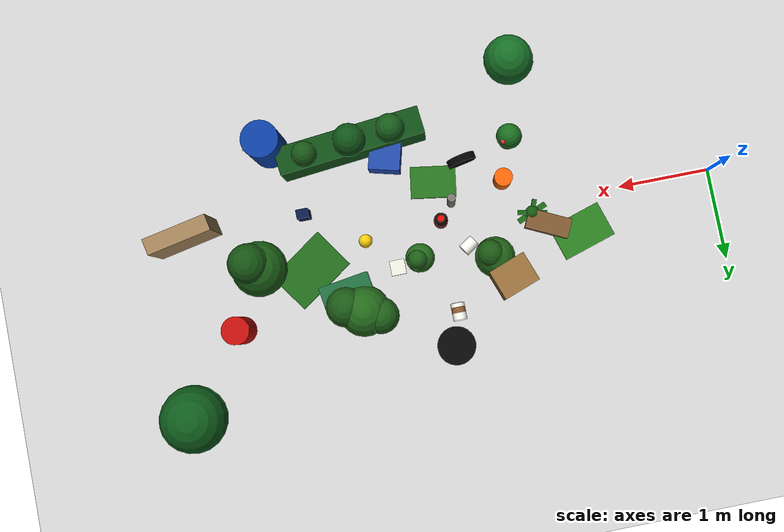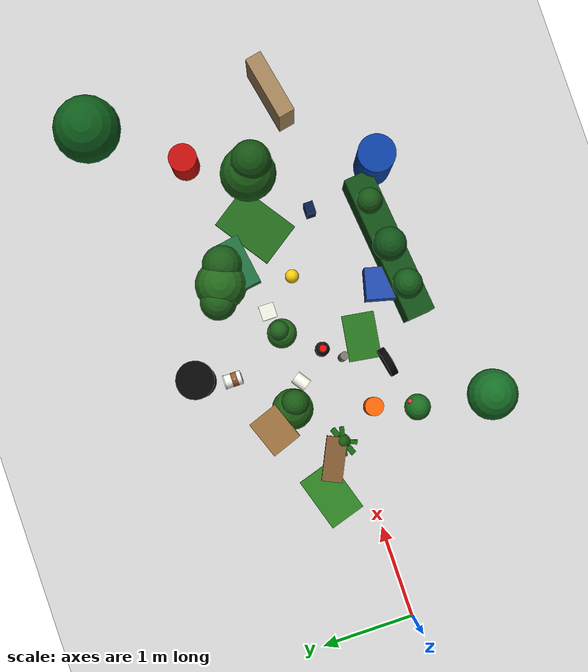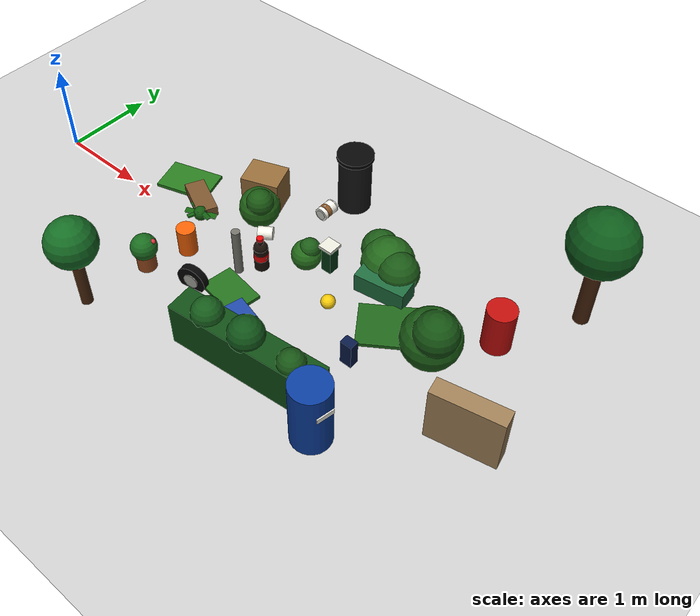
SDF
<?xml version="1.0" ?>
<sdf version="1.9">
  <world name="litterbot_world">

    <physics name="1ms" type="ignored">
      <max_step_size>0.001</max_step_size>
      <real_time_factor>1.0</real_time_factor>
    </physics>

    <plugin filename="ignition-gazebo-physics-system"
            name="ignition::gazebo::systems::Physics"/>
    <plugin filename="ignition-gazebo-user-commands-system"
            name="ignition::gazebo::systems::UserCommands"/>
    <plugin filename="ignition-gazebo-scene-broadcaster-system"
            name="ignition::gazebo::systems::SceneBroadcaster"/>
    <plugin filename="ignition-gazebo-sensors-system"
            name="ignition::gazebo::systems::Sensors">
      <render_engine>ogre</render_engine>
    </plugin>

    <light type="directional" name="sun">
      <cast_shadows>true</cast_shadows>
      <pose>0 0 10 0 0 0</pose>
      <diffuse>0.8 0.8 0.8 1</diffuse>
      <specular>0.2 0.2 0.2 1</specular>
      <direction>0.5 -0.1 -0.9</direction>
    </light>

    <model name="ground_plane">
      <static>true</static>
      <link name="link">
        <collision name="collision">
          <geometry>
            <plane>
              <normal>0 0 1</normal>
              <size>30 30</size>
            </plane>
          </geometry>
        </collision>
        <visual name="visual">
          <geometry>
            <plane>
              <normal>0 0 1</normal>
              <size>30 30</size>
            </plane>
          </geometry>
          <material>
            <ambient>0.8 0.8 0.8 1</ambient>
            <diffuse>0.8 0.8 0.8 1</diffuse>
          </material>
        </visual>
      </link>
    </model>

    <model name="target_coke_can">
      <static>true</static>
      <pose>3 0 0.19 0 0 0</pose>
      <link name="link">
        <collision name="body_collision">
          <pose>0 0 -0.035 0 0 0</pose>
          <geometry>
            <cylinder>
              <radius>0.075</radius>
              <length>0.27</length>
            </cylinder>
          </geometry>
        </collision>
        <collision name="neck_collision">
          <pose>0 0 0.135 0 0 0</pose>
          <geometry>
            <cylinder>
              <radius>0.032</radius>
              <length>0.12</length>
            </cylinder>
          </geometry>
        </collision>

        <visual name="bottle_body">
          <pose>0 0 -0.035 0 0 0</pose>
          <geometry>
            <cylinder>
              <radius>0.075</radius>
              <length>0.27</length>
            </cylinder>
          </geometry>
          <material>
            <ambient>0.06 0.035 0.02 1</ambient>
            <diffuse>0.10 0.06 0.035 1</diffuse>
            <specular>0.8 0.8 0.8 1</specular>
          </material>
        </visual>
        <visual name="red_label_front">
          <pose>0.001 0 0.0 0 0 0</pose>
          <geometry>
            <cylinder>
              <radius>0.077</radius>
              <length>0.075</length>
            </cylinder>
          </geometry>
          <material>
            <ambient>0.9 0.02 0.02 1</ambient>
            <diffuse>0.9 0.02 0.02 1</diffuse>
            <specular>0.2 0.2 0.2 1</specular>
          </material>
        </visual>
        <visual name="white_label_band">
          <pose>0.002 0 0.0 0 0 0</pose>
          <geometry>
            <box>
              <size>0.155 0.012 0.022</size>
            </box>
          </geometry>
          <material>
            <ambient>1 1 1 1</ambient>
            <diffuse>1 1 1 1</diffuse>
            <specular>0.1 0.1 0.1 1</specular>
          </material>
        </visual>
        <visual name="shoulder">
          <pose>0 0 0.105 0 0 0</pose>
          <geometry>
            <sphere>
              <radius>0.074</radius>
            </sphere>
          </geometry>
          <material>
            <ambient>0.06 0.035 0.02 1</ambient>
            <diffuse>0.10 0.06 0.035 1</diffuse>
            <specular>0.8 0.8 0.8 1</specular>
          </material>
        </visual>
        <visual name="neck">
          <pose>0 0 0.145 0 0 0</pose>
          <geometry>
            <cylinder>
              <radius>0.032</radius>
              <length>0.13</length>
            </cylinder>
          </geometry>
          <material>
            <ambient>0.055 0.032 0.018 1</ambient>
            <diffuse>0.09 0.05 0.03 1</diffuse>
            <specular>0.8 0.8 0.8 1</specular>
          </material>
        </visual>
        <visual name="red_cap">
          <pose>0 0 0.225 0 0 0</pose>
          <geometry>
            <cylinder>
              <radius>0.036</radius>
              <length>0.035</length>
            </cylinder>
          </geometry>
          <material>
            <ambient>0.9 0.02 0.02 1</ambient>
            <diffuse>0.9 0.02 0.02 1</diffuse>
            <specular>0.3 0.3 0.3 1</specular>
          </material>
        </visual>
      </link>
    </model>

    <model name="target_paper_cup">
      <static>true</static>
      <pose>3 1.0 0.08 0 1.5708 1.5708</pose>
      <link name="link">
        <collision name="cup_collision">
          <pose>0 0 0 0 0 0</pose>
          <geometry>
            <cylinder>
              <radius>0.075</radius>
              <length>0.18</length>
            </cylinder>
          </geometry>
        </collision>

        <visual name="cup_body">
          <pose>0 0 0 0 0 0</pose>
          <geometry>
            <cylinder>
              <radius>0.075</radius>
              <length>0.18</length>
            </cylinder>
          </geometry>
          <material>
            <ambient>0.96 0.96 0.92 1</ambient>
            <diffuse>0.96 0.96 0.92 1</diffuse>
            <specular>0.25 0.25 0.22 1</specular>
          </material>
        </visual>
        <visual name="cup_opening_dark">
          <pose>0 0 0.092 0 0 0</pose>
          <geometry>
            <cylinder>
              <radius>0.071</radius>
              <length>0.006</length>
            </cylinder>
          </geometry>
          <material>
            <ambient>0.08 0.07 0.055 1</ambient>
            <diffuse>0.08 0.07 0.055 1</diffuse>
            <specular>0.05 0.05 0.05 1</specular>
          </material>
        </visual>
        <visual name="cup_rim">
          <pose>0 0 0.096 0 0 0</pose>
          <geometry>
            <cylinder>
              <radius>0.079</radius>
              <length>0.012</length>
            </cylinder>
          </geometry>
          <material>
            <ambient>1.0 1.0 0.97 1</ambient>
            <diffuse>1.0 1.0 0.97 1</diffuse>
            <specular>0.3 0.3 0.27 1</specular>
          </material>
        </visual>
        <visual name="cup_bottom">
          <pose>0 0 -0.092 0 0 0</pose>
          <geometry>
            <cylinder>
              <radius>0.055</radius>
              <length>0.01</length>
            </cylinder>
          </geometry>
          <material>
            <ambient>0.82 0.82 0.78 1</ambient>
            <diffuse>0.82 0.82 0.78 1</diffuse>
            <specular>0.15 0.15 0.12 1</specular>
          </material>
        </visual>
        <visual name="brown_sleeve">
          <pose>0 0 -0.015 0 0 0</pose>
          <geometry>
            <cylinder>
              <radius>0.076</radius>
              <length>0.06</length>
            </cylinder>
          </geometry>
          <material>
            <ambient>0.55 0.34 0.16 1</ambient>
            <diffuse>0.55 0.34 0.16 1</diffuse>
            <specular>0.12 0.08 0.04 1</specular>
          </material>
        </visual>
        <visual name="white_label_strip">
          <pose>0.001 0 -0.015 0 0 0</pose>
          <geometry>
            <box>
              <size>0.155 0.012 0.026</size>
            </box>
          </geometry>
          <material>
            <ambient>0.98 0.98 0.94 1</ambient>
            <diffuse>0.98 0.98 0.94 1</diffuse>
            <specular>0.1 0.1 0.08 1</specular>
          </material>
        </visual>
      </link>
    </model>

    <!-- Static clutter field for environment-robustness tests. -->
    <model name="clutter_cardboard_box_left">
      <static>true</static>
      <pose>2.35 0.75 0.20 0 0 0.35</pose>
      <link name="link">
        <collision name="collision">
          <geometry><box><size>0.42 0.34 0.40</size></box></geometry>
        </collision>
        <visual name="visual">
          <geometry><box><size>0.42 0.34 0.40</size></box></geometry>
          <material>
            <ambient>0.58 0.42 0.22 1</ambient>
            <diffuse>0.58 0.42 0.22 1</diffuse>
            <specular>0.08 0.06 0.03 1</specular>
          </material>
        </visual>
      </link>
    </model>

    <model name="clutter_blue_box_right">
      <static>true</static>
      <pose>3.45 -0.85 0.16 0 0 -0.25</pose>
      <link name="link">
        <collision name="collision">
          <geometry><box><size>0.34 0.42 0.32</size></box></geometry>
        </collision>
        <visual name="visual">
          <geometry><box><size>0.34 0.42 0.32</size></box></geometry>
          <material>
            <ambient>0.12 0.28 0.65 1</ambient>
            <diffuse>0.12 0.28 0.65 1</diffuse>
            <specular>0.12 0.12 0.18 1</specular>
          </material>
        </visual>
      </link>
    </model>

    <model name="clutter_low_green_crate">
      <static>true</static>
      <pose>4.15 0.55 0.11 0 0 0.15</pose>
      <link name="link">
        <collision name="collision">
          <geometry><box><size>0.55 0.25 0.22</size></box></geometry>
        </collision>
        <visual name="visual">
          <geometry><box><size>0.55 0.25 0.22</size></box></geometry>
          <material>
            <ambient>0.12 0.42 0.24 1</ambient>
            <diffuse>0.12 0.42 0.24 1</diffuse>
            <specular>0.05 0.08 0.05 1</specular>
          </material>
        </visual>
      </link>
    </model>

    <model name="clutter_round_bin_left">
      <static>true</static>
      <pose>3.1 1.35 0.33 0 0 0</pose>
      <link name="link">
        <collision name="collision">
          <geometry><cylinder><radius>0.18</radius><length>0.66</length></cylinder></geometry>
        </collision>
        <visual name="bin_body">
          <geometry><cylinder><radius>0.18</radius><length>0.66</length></cylinder></geometry>
          <material>
            <ambient>0.08 0.08 0.08 1</ambient>
            <diffuse>0.08 0.08 0.08 1</diffuse>
            <specular>0.25 0.25 0.25 1</specular>
          </material>
        </visual>
        <visual name="bin_lid">
          <pose>0 0 0.35 0 0 0</pose>
          <geometry><cylinder><radius>0.20</radius><length>0.045</length></cylinder></geometry>
          <material>
            <ambient>0.02 0.02 0.02 1</ambient>
            <diffuse>0.02 0.02 0.02 1</diffuse>
            <specular>0.3 0.3 0.3 1</specular>
          </material>
        </visual>
      </link>
    </model>

    <model name="clutter_recycle_bin_right">
      <static>true</static>
      <pose>4.7 -1.15 0.38 0 0 -0.2</pose>
      <link name="link">
        <collision name="collision">
          <geometry><cylinder><radius>0.20</radius><length>0.76</length></cylinder></geometry>
        </collision>
        <visual name="bin_body">
          <geometry><cylinder><radius>0.20</radius><length>0.76</length></cylinder></geometry>
          <material>
            <ambient>0.04 0.24 0.62 1</ambient>
            <diffuse>0.04 0.24 0.62 1</diffuse>
            <specular>0.16 0.16 0.22 1</specular>
          </material>
        </visual>
        <visual name="white_slot">
          <pose>0.205 0 0.16 0 0 0</pose>
          <geometry><box><size>0.012 0.18 0.055</size></box></geometry>
          <material>
            <ambient>0.95 0.95 0.9 1</ambient>
            <diffuse>0.95 0.95 0.9 1</diffuse>
            <specular>0.05 0.05 0.05 1</specular>
          </material>
        </visual>
      </link>
    </model>

    <model name="clutter_red_barrel">
      <static>true</static>
      <pose>5.35 0.75 0.25 0 0 0</pose>
      <link name="link">
        <collision name="collision">
          <geometry><cylinder><radius>0.15</radius><length>0.50</length></cylinder></geometry>
        </collision>
        <visual name="visual">
          <geometry><cylinder><radius>0.15</radius><length>0.50</length></cylinder></geometry>
          <material>
            <ambient>0.75 0.05 0.04 1</ambient>
            <diffuse>0.75 0.05 0.04 1</diffuse>
            <specular>0.15 0.08 0.08 1</specular>
          </material>
        </visual>
      </link>
    </model>

    <model name="clutter_tree_left">
      <static>true</static>
      <pose>5.8 1.55 0 0 0 0</pose>
      <link name="link">
        <collision name="trunk_collision">
          <pose>0 0 0.45 0 0 0</pose>
          <geometry><cylinder><radius>0.08</radius><length>0.90</length></cylinder></geometry>
        </collision>
        <visual name="trunk">
          <pose>0 0 0.45 0 0 0</pose>
          <geometry><cylinder><radius>0.08</radius><length>0.90</length></cylinder></geometry>
          <material>
            <ambient>0.28 0.14 0.05 1</ambient>
            <diffuse>0.28 0.14 0.05 1</diffuse>
            <specular>0.05 0.03 0.02 1</specular>
          </material>
        </visual>
        <visual name="canopy">
          <pose>0 0 1.05 0 0 0</pose>
          <geometry><sphere><radius>0.34</radius></sphere></geometry>
          <material>
            <ambient>0.05 0.35 0.10 1</ambient>
            <diffuse>0.05 0.35 0.10 1</diffuse>
            <specular>0.05 0.08 0.04 1</specular>
          </material>
        </visual>
      </link>
    </model>

    <model name="clutter_tree_right">
      <static>true</static>
      <pose>2.0 -1.45 0 0 0 0</pose>
      <link name="link">
        <collision name="trunk_collision">
          <pose>0 0 0.36 0 0 0</pose>
          <geometry><cylinder><radius>0.06</radius><length>0.72</length></cylinder></geometry>
        </collision>
        <visual name="trunk">
          <pose>0 0 0.36 0 0 0</pose>
          <geometry><cylinder><radius>0.06</radius><length>0.72</length></cylinder></geometry>
          <material>
            <ambient>0.30 0.16 0.06 1</ambient>
            <diffuse>0.30 0.16 0.06 1</diffuse>
            <specular>0.05 0.03 0.02 1</specular>
          </material>
        </visual>
        <visual name="canopy">
          <pose>0 0 0.82 0 0 0</pose>
          <geometry><sphere><radius>0.26</radius></sphere></geometry>
          <material>
            <ambient>0.08 0.42 0.14 1</ambient>
            <diffuse>0.08 0.42 0.14 1</diffuse>
            <specular>0.04 0.07 0.03 1</specular>
          </material>
        </visual>
      </link>
    </model>

    <model name="clutter_loose_tire">
      <static>true</static>
      <pose>2.65 -0.62 0.10 1.5708 0 0.2</pose>
      <link name="link">
        <collision name="collision">
          <geometry><cylinder><radius>0.16</radius><length>0.08</length></cylinder></geometry>
        </collision>
        <visual name="outer">
          <geometry><cylinder><radius>0.16</radius><length>0.08</length></cylinder></geometry>
          <material>
            <ambient>0.015 0.015 0.015 1</ambient>
            <diffuse>0.015 0.015 0.015 1</diffuse>
            <specular>0.12 0.12 0.12 1</specular>
          </material>
        </visual>
        <visual name="inner_hole">
          <pose>0 0 0.045 0 0 0</pose>
          <geometry><cylinder><radius>0.08</radius><length>0.01</length></cylinder></geometry>
          <material>
            <ambient>0.65 0.65 0.62 1</ambient>
            <diffuse>0.65 0.65 0.62 1</diffuse>
            <specular>0.04 0.04 0.04 1</specular>
          </material>
        </visual>
      </link>
    </model>

    <model name="clutter_near_occluder_post">
      <static>true</static>
      <pose>2.85 -0.18 0.28 0 0 0</pose>
      <link name="link">
        <collision name="collision">
          <geometry><cylinder><radius>0.045</radius><length>0.56</length></cylinder></geometry>
        </collision>
        <visual name="visual">
          <geometry><cylinder><radius>0.045</radius><length>0.56</length></cylinder></geometry>
          <material>
            <ambient>0.45 0.45 0.42 1</ambient>
            <diffuse>0.45 0.45 0.42 1</diffuse>
            <specular>0.18 0.18 0.18 1</specular>
          </material>
        </visual>
      </link>
    </model>

    <model name="clutter_small_white_cup_left">
      <static>true</static>
      <pose>2.75 0.32 0.09 0 1.5708 0.6</pose>
      <link name="link">
        <collision name="collision">
          <geometry><cylinder><radius>0.07</radius><length>0.16</length></cylinder></geometry>
        </collision>
        <visual name="visual">
          <geometry><cylinder><radius>0.07</radius><length>0.16</length></cylinder></geometry>
          <material>
            <ambient>0.95 0.95 0.90 1</ambient>
            <diffuse>0.95 0.95 0.90 1</diffuse>
            <specular>0.2 0.2 0.18 1</specular>
          </material>
        </visual>
      </link>
    </model>

    <model name="clutter_green_column_left">
      <static>true</static>
      <pose>3.55 0.42 0.19 0 0 0</pose>
      <link name="link">
        <collision name="collision">
          <geometry><box><size>0.12 0.12 0.30</size></box></geometry>
        </collision>
        <visual name="body">
          <geometry><box><size>0.12 0.12 0.30</size></box></geometry>
          <material>
            <ambient>0.02 0.22 0.08 1</ambient>
            <diffuse>0.02 0.22 0.08 1</diffuse>
            <specular>0.5 0.5 0.45 1</specular>
          </material>
        </visual>
        <visual name="top_plate">
          <pose>0 0 0.17 0 0 0</pose>
          <geometry><box><size>0.16 0.16 0.035</size></box></geometry>
          <material>
            <ambient>0.9 0.9 0.85 1</ambient>
            <diffuse>0.9 0.9 0.85 1</diffuse>
          </material>
        </visual>
      </link>
    </model>

    <model name="clutter_blue_column_right">
      <static>true</static>
      <pose>4.45 -0.35 0.19 0 0 0</pose>
      <link name="link">
        <collision name="collision">
          <geometry><box><size>0.13 0.10 0.29</size></box></geometry>
        </collision>
        <visual name="body">
          <geometry><box><size>0.13 0.10 0.29</size></box></geometry>
          <material>
            <ambient>0.03 0.10 0.28 1</ambient>
            <diffuse>0.03 0.10 0.28 1</diffuse>
            <specular>0.5 0.5 0.55 1</specular>
          </material>
        </visual>
      </link>
    </model>

    <model name="clutter_flat_box_foreground">
      <static>true</static>
      <pose>1.85 0.25 0.06 0 0 -0.45</pose>
      <link name="link">
        <collision name="collision">
          <geometry><box><size>0.48 0.22 0.12</size></box></geometry>
        </collision>
        <visual name="visual">
          <geometry><box><size>0.48 0.22 0.12</size></box></geometry>
          <material>
            <ambient>0.48 0.33 0.18 1</ambient>
            <diffuse>0.48 0.33 0.18 1</diffuse>
            <specular>0.06 0.04 0.02 1</specular>
          </material>
        </visual>
      </link>
    </model>

    <model name="clutter_back_wall_boxes">
      <static>true</static>
      <pose>5.75 -0.35 0.32 0 0 0.2</pose>
      <link name="link">
        <collision name="collision">
          <geometry><box><size>0.70 0.18 0.64</size></box></geometry>
        </collision>
        <visual name="visual">
          <geometry><box><size>0.70 0.18 0.64</size></box></geometry>
          <material>
            <ambient>0.62 0.50 0.34 1</ambient>
            <diffuse>0.62 0.50 0.34 1</diffuse>
          </material>
        </visual>
      </link>
    </model>

    <model name="clutter_yellow_ball">
      <static>true</static>
      <pose>3.85 0.05 0.075 0 0 0</pose>
      <link name="link">
        <collision name="collision">
          <geometry><sphere><radius>0.075</radius></sphere></geometry>
        </collision>
        <visual name="visual">
          <geometry><sphere><radius>0.075</radius></sphere></geometry>
          <material>
            <ambient>0.95 0.78 0.04 1</ambient>
            <diffuse>0.95 0.78 0.04 1</diffuse>
            <specular>0.18 0.16 0.08 1</specular>
          </material>
        </visual>
      </link>
    </model>

    <model name="clutter_short_cone">
      <static>true</static>
      <pose>2.25 -0.32 0.16 0 0 0</pose>
      <link name="link">
        <collision name="collision">
          <geometry><cylinder><radius>0.10</radius><length>0.32</length></cylinder></geometry>
        </collision>
        <visual name="visual">
          <geometry><cylinder><radius>0.10</radius><length>0.32</length></cylinder></geometry>
          <material>
            <ambient>0.95 0.38 0.02 1</ambient>
            <diffuse>0.95 0.38 0.02 1</diffuse>
            <specular>0.12 0.08 0.04 1</specular>
          </material>
        </visual>
      </link>
    </model>

    <!-- ============ FOLIAGE / VEGETATION ============ -->

    <!-- Low bush near the target area — partially occludes at close range -->
    <model name="foliage_bush_near_left">
      <static>true</static>
      <pose>2.5 0.50 0.0 0 0 0</pose>
      <link name="link">
        <collision name="collision">
          <pose>0 0 0.18 0 0 0</pose>
          <geometry><sphere><radius>0.22</radius></sphere></geometry>
        </collision>
        <visual name="bush_main">
          <pose>0 0 0.18 0 0 0</pose>
          <geometry><sphere><radius>0.22</radius></sphere></geometry>
          <material>
            <ambient>0.08 0.32 0.06 1</ambient>
            <diffuse>0.12 0.38 0.08 1</diffuse>
            <specular>0.03 0.05 0.02 1</specular>
          </material>
        </visual>
        <visual name="bush_top">
          <pose>0.05 -0.04 0.30 0 0 0</pose>
          <geometry><sphere><radius>0.15</radius></sphere></geometry>
          <material>
            <ambient>0.06 0.28 0.05 1</ambient>
            <diffuse>0.10 0.34 0.07 1</diffuse>
            <specular>0.03 0.04 0.02 1</specular>
          </material>
        </visual>
      </link>
    </model>

    <!-- Tall hedge along the right side -->
    <model name="foliage_hedge_right">
      <static>true</static>
      <pose>3.8 -1.0 0.25 0 0 0.1</pose>
      <link name="link">
        <collision name="collision">
          <geometry><box><size>1.6 0.3 0.50</size></box></geometry>
        </collision>
        <visual name="hedge_body">
          <geometry><box><size>1.6 0.3 0.50</size></box></geometry>
          <material>
            <ambient>0.04 0.25 0.06 1</ambient>
            <diffuse>0.06 0.30 0.08 1</diffuse>
            <specular>0.02 0.04 0.02 1</specular>
          </material>
        </visual>
        <visual name="hedge_top_bumps_1">
          <pose>-0.45 0 0.26 0 0 0</pose>
          <geometry><sphere><radius>0.16</radius></sphere></geometry>
          <material>
            <ambient>0.05 0.30 0.07 1</ambient>
            <diffuse>0.08 0.35 0.10 1</diffuse>
            <specular>0.02 0.04 0.02 1</specular>
          </material>
        </visual>
        <visual name="hedge_top_bumps_2">
          <pose>0.0 0 0.28 0 0 0</pose>
          <geometry><sphere><radius>0.18</radius></sphere></geometry>
          <material>
            <ambient>0.03 0.26 0.05 1</ambient>
            <diffuse>0.06 0.32 0.09 1</diffuse>
            <specular>0.02 0.03 0.02 1</specular>
          </material>
        </visual>
        <visual name="hedge_top_bumps_3">
          <pose>0.50 0 0.24 0 0 0</pose>
          <geometry><sphere><radius>0.14</radius></sphere></geometry>
          <material>
            <ambient>0.06 0.28 0.06 1</ambient>
            <diffuse>0.09 0.33 0.08 1</diffuse>
            <specular>0.02 0.04 0.02 1</specular>
          </material>
        </visual>
      </link>
    </model>

    <!-- Small round shrub in the mid-field -->
    <model name="foliage_shrub_mid">
      <static>true</static>
      <pose>3.3 0.35 0.0 0 0 0</pose>
      <link name="link">
        <collision name="collision">
          <pose>0 0 0.14 0 0 0</pose>
          <geometry><sphere><radius>0.16</radius></sphere></geometry>
        </collision>
        <visual name="shrub_lower">
          <pose>0 0 0.12 0 0 0</pose>
          <geometry><sphere><radius>0.16</radius></sphere></geometry>
          <material>
            <ambient>0.10 0.36 0.08 1</ambient>
            <diffuse>0.14 0.42 0.10 1</diffuse>
            <specular>0.03 0.05 0.03 1</specular>
          </material>
        </visual>
        <visual name="shrub_upper">
          <pose>0.03 0.02 0.22 0 0 0</pose>
          <geometry><sphere><radius>0.11</radius></sphere></geometry>
          <material>
            <ambient>0.07 0.30 0.06 1</ambient>
            <diffuse>0.11 0.36 0.09 1</diffuse>
            <specular>0.03 0.04 0.02 1</specular>
          </material>
        </visual>
      </link>
    </model>

    <!-- Grass patch cluster near robot start — low flat green boxes -->
    <model name="foliage_grass_patch_1">
      <static>true</static>
      <pose>1.5 0.4 0.02 0 0 0.3</pose>
      <link name="link">
        <collision name="collision">
          <geometry><box><size>0.6 0.4 0.04</size></box></geometry>
        </collision>
        <visual name="visual">
          <geometry><box><size>0.6 0.4 0.04</size></box></geometry>
          <material>
            <ambient>0.12 0.42 0.10 1</ambient>
            <diffuse>0.16 0.48 0.12 1</diffuse>
            <specular>0.02 0.03 0.01 1</specular>
          </material>
        </visual>
      </link>
    </model>

    <model name="foliage_grass_patch_2">
      <static>true</static>
      <pose>3.0 -0.45 0.02 0 0 -0.15</pose>
      <link name="link">
        <collision name="collision">
          <geometry><box><size>0.5 0.35 0.04</size></box></geometry>
        </collision>
        <visual name="visual">
          <geometry><box><size>0.5 0.35 0.04</size></box></geometry>
          <material>
            <ambient>0.10 0.38 0.08 1</ambient>
            <diffuse>0.14 0.44 0.11 1</diffuse>
            <specular>0.02 0.03 0.01 1</specular>
          </material>
        </visual>
      </link>
    </model>

    <model name="foliage_grass_patch_3">
      <static>true</static>
      <pose>4.5 0.25 0.02 0 0 0.6</pose>
      <link name="link">
        <collision name="collision">
          <geometry><box><size>0.7 0.5 0.04</size></box></geometry>
        </collision>
        <visual name="visual">
          <geometry><box><size>0.7 0.5 0.04</size></box></geometry>
          <material>
            <ambient>0.08 0.35 0.07 1</ambient>
            <diffuse>0.12 0.40 0.10 1</diffuse>
            <specular>0.02 0.03 0.01 1</specular>
          </material>
        </visual>
      </link>
    </model>

    <!-- Tall bush at far range — tests detection through foliage -->
    <model name="foliage_tall_bush_far">
      <static>true</static>
      <pose>5.0 0.15 0.0 0 0 0</pose>
      <link name="link">
        <collision name="trunk_col">
          <pose>0 0 0.15 0 0 0</pose>
          <geometry><cylinder><radius>0.04</radius><length>0.30</length></cylinder></geometry>
        </collision>
        <collision name="canopy_col">
          <pose>0 0 0.40 0 0 0</pose>
          <geometry><sphere><radius>0.30</radius></sphere></geometry>
        </collision>
        <visual name="trunk">
          <pose>0 0 0.15 0 0 0</pose>
          <geometry><cylinder><radius>0.04</radius><length>0.30</length></cylinder></geometry>
          <material>
            <ambient>0.24 0.12 0.04 1</ambient>
            <diffuse>0.28 0.14 0.05 1</diffuse>
            <specular>0.04 0.02 0.01 1</specular>
          </material>
        </visual>
        <visual name="canopy_lower">
          <pose>0 0 0.36 0 0 0</pose>
          <geometry><sphere><radius>0.30</radius></sphere></geometry>
          <material>
            <ambient>0.06 0.30 0.05 1</ambient>
            <diffuse>0.10 0.36 0.08 1</diffuse>
            <specular>0.03 0.05 0.02 1</specular>
          </material>
        </visual>
        <visual name="canopy_upper">
          <pose>0.08 -0.06 0.55 0 0 0</pose>
          <geometry><sphere><radius>0.22</radius></sphere></geometry>
          <material>
            <ambient>0.04 0.26 0.04 1</ambient>
            <diffuse>0.08 0.32 0.07 1</diffuse>
            <specular>0.02 0.04 0.02 1</specular>
          </material>
        </visual>
      </link>
    </model>

    <!-- Low wide bush behind target area -->
    <model name="foliage_wide_bush_back">
      <static>true</static>
      <pose>4.0 0.80 0.0 0 0 -0.2</pose>
      <link name="link">
        <collision name="collision">
          <pose>0 0 0.15 0 0 0</pose>
          <geometry><box><size>0.60 0.40 0.30</size></box></geometry>
        </collision>
        <visual name="base">
          <pose>0 0 0.13 0 0 0</pose>
          <geometry><sphere><radius>0.28</radius></sphere></geometry>
          <material>
            <ambient>0.09 0.34 0.07 1</ambient>
            <diffuse>0.13 0.40 0.10 1</diffuse>
            <specular>0.03 0.04 0.02 1</specular>
          </material>
        </visual>
        <visual name="left_lobe">
          <pose>-0.18 0.05 0.16 0 0 0</pose>
          <geometry><sphere><radius>0.20</radius></sphere></geometry>
          <material>
            <ambient>0.07 0.30 0.06 1</ambient>
            <diffuse>0.11 0.36 0.09 1</diffuse>
            <specular>0.02 0.04 0.02 1</specular>
          </material>
        </visual>
        <visual name="right_lobe">
          <pose>0.20 -0.04 0.18 0 0 0</pose>
          <geometry><sphere><radius>0.22</radius></sphere></geometry>
          <material>
            <ambient>0.06 0.28 0.05 1</ambient>
            <diffuse>0.10 0.34 0.08 1</diffuse>
            <specular>0.02 0.04 0.02 1</specular>
          </material>
        </visual>
      </link>
    </model>

    <!-- Flower pot with plant — adds color variety -->
    <model name="foliage_potted_plant">
      <static>true</static>
      <pose>2.1 -0.75 0.0 0 0 0</pose>
      <link name="link">
        <collision name="pot_col">
          <pose>0 0 0.10 0 0 0</pose>
          <geometry><cylinder><radius>0.10</radius><length>0.20</length></cylinder></geometry>
        </collision>
        <visual name="pot">
          <pose>0 0 0.10 0 0 0</pose>
          <geometry><cylinder><radius>0.10</radius><length>0.20</length></cylinder></geometry>
          <material>
            <ambient>0.55 0.25 0.10 1</ambient>
            <diffuse>0.60 0.30 0.12 1</diffuse>
            <specular>0.08 0.04 0.02 1</specular>
          </material>
        </visual>
        <visual name="plant_body">
          <pose>0 0 0.28 0 0 0</pose>
          <geometry><sphere><radius>0.14</radius></sphere></geometry>
          <material>
            <ambient>0.06 0.35 0.08 1</ambient>
            <diffuse>0.10 0.42 0.12 1</diffuse>
            <specular>0.03 0.05 0.02 1</specular>
          </material>
        </visual>
        <visual name="flower_1">
          <pose>0.08 0.06 0.36 0 0 0</pose>
          <geometry><sphere><radius>0.03</radius></sphere></geometry>
          <material>
            <ambient>0.85 0.15 0.20 1</ambient>
            <diffuse>0.90 0.20 0.25 1</diffuse>
            <specular>0.10 0.05 0.05 1</specular>
          </material>
        </visual>
        <visual name="flower_2">
          <pose>-0.06 0.04 0.34 0 0 0</pose>
          <geometry><sphere><radius>0.025</radius></sphere></geometry>
          <material>
            <ambient>0.90 0.75 0.05 1</ambient>
            <diffuse>0.95 0.80 0.10 1</diffuse>
            <specular>0.10 0.08 0.03 1</specular>
          </material>
        </visual>
      </link>
    </model>

    <!-- Ground-hugging fern clump between robot and target -->
    <model name="foliage_fern_clump">
      <static>true</static>
      <pose>2.0 0.10 0.0 0 0 0.4</pose>
      <link name="link">
        <collision name="collision">
          <pose>0 0 0.08 0 0 0</pose>
          <geometry><box><size>0.40 0.30 0.16</size></box></geometry>
        </collision>
        <visual name="frond_1">
          <pose>0.0 0.0 0.06 0.2 0 0</pose>
          <geometry><box><size>0.35 0.06 0.02</size></box></geometry>
          <material>
            <ambient>0.05 0.32 0.04 1</ambient>
            <diffuse>0.08 0.38 0.06 1</diffuse>
            <specular>0.03 0.05 0.02 1</specular>
          </material>
        </visual>
        <visual name="frond_2">
          <pose>0.0 0.0 0.08 -0.15 0 0.8</pose>
          <geometry><box><size>0.30 0.05 0.02</size></box></geometry>
          <material>
            <ambient>0.06 0.34 0.05 1</ambient>
            <diffuse>0.09 0.40 0.07 1</diffuse>
            <specular>0.02 0.04 0.02 1</specular>
          </material>
        </visual>
        <visual name="frond_3">
          <pose>0.0 0.0 0.10 0.1 0 -0.6</pose>
          <geometry><box><size>0.32 0.05 0.02</size></box></geometry>
          <material>
            <ambient>0.04 0.30 0.04 1</ambient>
            <diffuse>0.07 0.36 0.06 1</diffuse>
            <specular>0.02 0.04 0.02 1</specular>
          </material>
        </visual>
        <visual name="center_mass">
          <pose>0 0 0.06 0 0 0</pose>
          <geometry><sphere><radius>0.08</radius></sphere></geometry>
          <material>
            <ambient>0.05 0.28 0.04 1</ambient>
            <diffuse>0.08 0.34 0.06 1</diffuse>
            <specular>0.02 0.04 0.02 1</specular>
          </material>
        </visual>
      </link>
    </model>

  </world>
</sdf>
